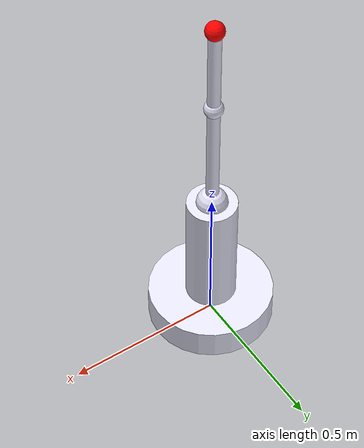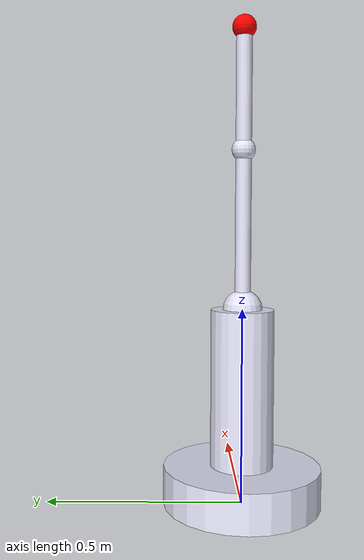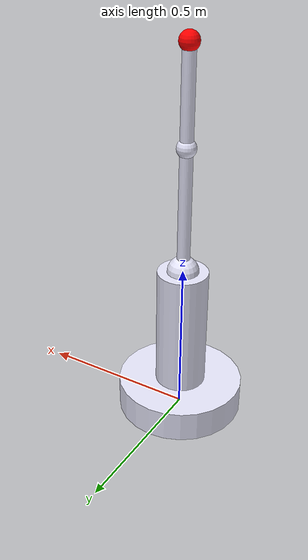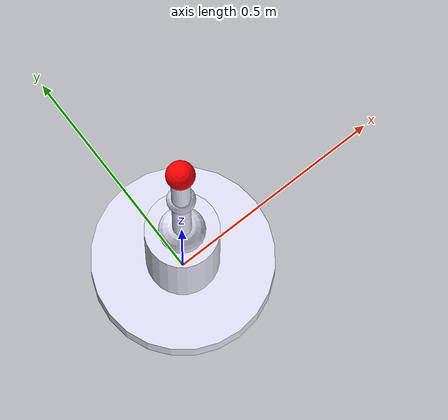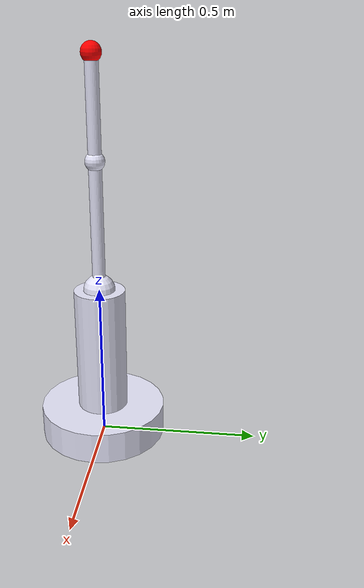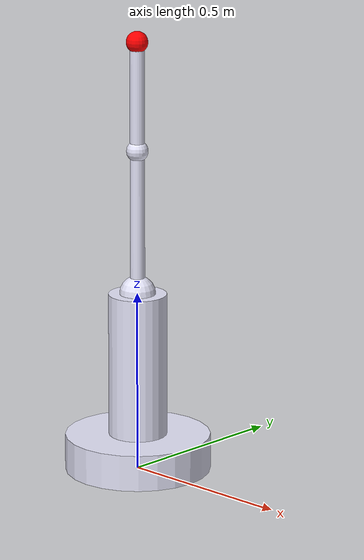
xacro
<?xml version="1.0"?>
<robot xmlns:xacro="http://www.ros.org/wiki/xacro" name="Epon">
  <xacro:include filename="$(find manipulator_driver_sim)/urdf/manipulator_model2.urdf.xacro" />

  <!-- 加载控制插件定义 -->
  <xacro:arg name="simulation_controllers" default="" />
  <!-- Gazebo 插件挂载 -->
  <gazebo>
    <plugin filename="libign_ros2_control-system.so" name="ign_ros2_control::IgnitionROS2ControlPlugin">
      <parameters>$(arg simulation_controllers)</parameters>
      <controller_manager_node_name>controller_manager</controller_manager_node_name>
    </plugin>
  </gazebo>

  <ros2_control name="GazeboSystem" type="system">
    <hardware>
      <plugin>ign_ros2_control/IgnitionSystem</plugin>
    </hardware>

    <joint name="base_link_to_link1">
        <command_interface name="position" />
        <state_interface name="position"/>
        <state_interface name="velocity"/>
    </joint>

    <joint name="link1_to_link2">
        <command_interface name="position" />
        <state_interface name="position"/>
        <state_interface name="velocity"/>
    </joint>

    <joint name="link2_to_link3">
        <command_interface name="position" />
        <state_interface name="position"/>
        <state_interface name="velocity"/>
    </joint>
</ros2_control>
  <!-- 插件挂载 -->

</robot>

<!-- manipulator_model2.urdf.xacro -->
<robot xmlns:xacro="http://www.ros.org/wiki/xacro" name="manipulator_robot3">
    <!-- Link 'world' for reference -->
    <link name="world"/>
    <material name="blue">
        <color rgba="0.2 0.2 1 0.7"/>
    </material>
    <material name="black">
        <color rgba="0 0 0 0.95"/>
    </material>
    <material name="red">
        <color rgba="1 0 0 0.95"/>
    </material>
    <material name="silver">
        <color rgba="0.9 0.9 0.98 1.0"/>
    </material>

    <!-- base_link is fixed to the world -->
    <joint name="world_to_base_link" type="fixed">
        <parent link="world"/>
        <child link="base_link"/>
        <origin xyz="0 0 0" rpy="0 0 0"/>
    </joint>
    <link name="base_link">
        <inertial>
            <origin xyz="0 0 0.05" rpy="0 0 0"/>
            <mass value="1.0"/>
            <inertia
                ixx="0.0108333" ixy="0.0" ixz="0.0"
                iyy="0.0108333" iyz="0.0"
                izz="0.02" />
        </inertial>

        <visual>
            <origin xyz="0 0 0.05" rpy="0 0 0"/>
            <geometry>
                <cylinder length="0.1" radius="0.2"/>
            </geometry>
            <material name="silver"/>
        </visual>

        <collision>
            <origin xyz="0 0 0.05" rpy="0 0 0"/>
            <geometry>
                <cylinder length="0.1" radius="0.2"/>
            </geometry>
        </collision>
    </link>

    <!-- Joint between base_link and link1 -->
    <joint name="base_link_to_link1" type="revolute">
        <parent link="base_link"/>
        <child link="link1"/>
        <origin xyz="0 0 0.1" rpy="0 0 0"/>
        <axis xyz="0 0 1"/>
        <limit lower="-3.14159" upper="3.14159" effort="10" velocity="3.0"/>
    </joint>

    <!-- link1vertical cylinder with height 0.4 -->
    <link name="link1">
        <inertial>
            <origin xyz="0 0 0.2" rpy="0 0 0"/>
            <mass value="0.5"/>
            <inertia
                ixx="0.02" ixy="0.0" ixz="0.0"
                iyy="0.02" iyz="0.0"
                izz="0.005"/>
        </inertial>
        <visual>
            <origin xyz="0 0 0.2" rpy="0 0 0"/>
            <geometry>
                <cylinder length="0.4" radius="0.08"/>
            </geometry>
            <material name="silver"/>
        </visual>
        <collision>
            <origin xyz="0 0 0.2" rpy="0 0 0"/>
            <geometry>
                <!-- Reduced length in collision geometry to avoid self-collision -->
                <cylinder length="0.3" radius="0.08"/>
            </geometry>
        </collision>
        <!-- Sphere on top for visualization -->
        <visual>
            <origin xyz="0 0 0.4" rpy="0 0 0"/>
            <geometry>
                <sphere radius="0.05"/>
            </geometry>
            <material name="silver"/>
        </visual>
    </link>

    <!-- Joint between link1 and link2 -->
    <joint name="link1_to_link2" type="revolute">
        <parent link="link1"/>
        <child link="link2"/>
        <origin xyz="0 0 0.4" rpy="0 0 0"/>
        <axis xyz="0 1 0"/>
        <limit lower="-1.5708" upper="1.5708" effort="10" velocity="3.0"/>
    </joint>

    <!-- link2thinner cylinder -->
    <link name="link2">
        <inertial>
            <origin xyz="0 0 0.2" rpy="0 0 0"/>
            <mass value="0.5"/>
            <inertia
                ixx="0.02" ixy="0.0" ixz="0.0"
                iyy="0.02" iyz="0.0"
                izz="0.005"/>
        </inertial>
        <visual>
            <origin xyz="0 0 0.2" rpy="0 0 0"/>
            <geometry>
                <cylinder length="0.4" radius="0.02"/>
            </geometry>
            <material name="silver"/>
        </visual>
        <collision>
            <origin xyz="0 0 0.2" rpy="0 0 0"/>
            <geometry>
                <cylinder length="0.4" radius="0.02"/>
            </geometry>
        </collision>
    </link>

    <!-- link3an additional link for the 3rd DOF -->
    <link name="link3">
        <inertial>
            <origin xyz="0 0 0.15" rpy="0 0 0"/>
            <mass value="0.5"/>
            <inertia
                ixx="0.02"
                ixy="0.0"
                ixz="0.0"
                iyy="0.02"
                iyz="0.0"
                izz="0.005"/>
        </inertial>
        <visual>
            <origin xyz="0 0 0.15" rpy="0 0 0"/>
            <geometry>
                <cylinder length="0.3" radius="0.02"/>
            </geometry>
            <material name="silver"/>
        </visual>
        <collision>
            <origin xyz="0 0 0.15" rpy="0 0 0"/>
            <geometry>
                <cylinder length="0.3" radius="0.02"/>
            </geometry>
        </collision>
                <!-- Sphere on top for visualization -->
        <visual>
            <origin xyz="0 0 0" rpy="0 0 0"/>
            <geometry>
                <sphere radius="0.03"/>
            </geometry>
            <material name="silver"/>
        </visual>
    </link>

    <!-- 3rd revolute joint between link2 and link3 -->
    <joint name="link2_to_link3" type="revolute">
        <parent link="link2"/>
        <child link="link3"/>
        <origin xyz="0 0 0.4" rpy="0 0 0"/>
        <axis xyz="0 1 0"/>
        <limit lower="-1.5708" upper="1.5708" effort="10" velocity="3.0"/>
    </joint>

    <!-- The end_effector remains the same, but now it's fixed to link3 instead of link2 -->
    <link name="end_effector">
        <visual>
            <geometry>
                <sphere radius="0.03"/>
            </geometry>
            <material name="red"/>
        </visual>
    </link>

    <joint name="link3_to_end_effector" type="fixed">
        <parent link="link3"/>
        <child link="end_effector"/>
        <origin xyz="0 0 0.3" rpy="0 0 0"/>
    </joint>

</robot>
